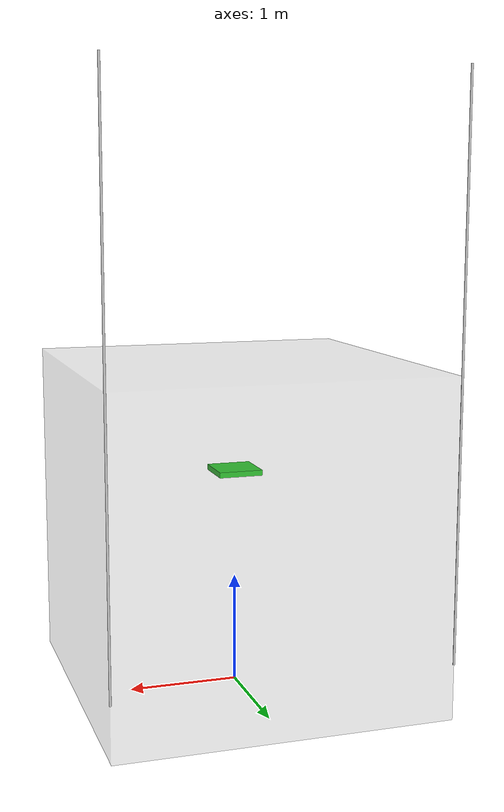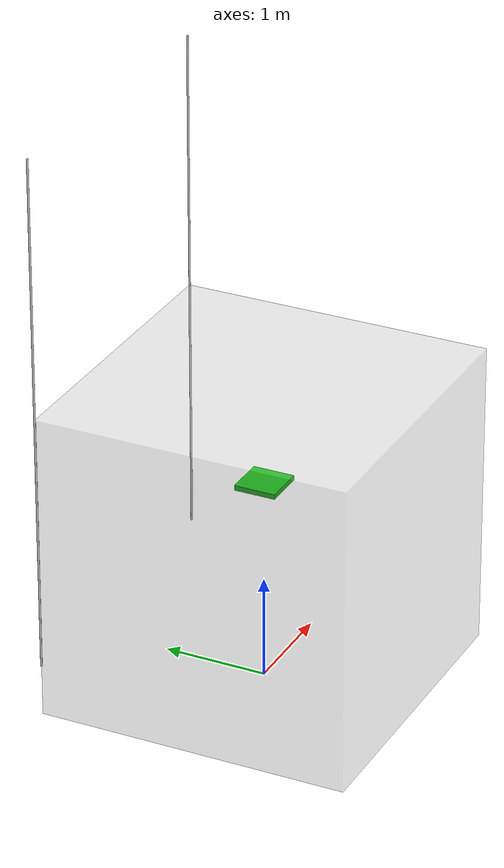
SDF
<?xml version="1.0" ?>
<sdf version="1.6">
  <model name="cdpr">
    <plugin
      filename="gz-sim-joint-state-publisher-system"
      name="gz::sim::systems::JointStatePublisher">
    </plugin>

    <!-- Base frame - single parallelpiped cuboid with nearly infinite mass -->
    <link name="base_link">
      <pose>0 0 1.5 0 0 0</pose>
      <inertial>
        <mass>1e6</mass>
        <inertia>
          <ixx>1e6</ixx>
          <iyy>1e6</iyy>
          <izz>1e6</izz>
        </inertia>
      </inertial>
      <visual name="visual">
        <geometry>
          <box>
            <size>3.0 3.0 3.0</size>
          </box>
        </geometry>
        <material>
          <ambient>0.7 0.7 0.7 0.3</ambient>
          <diffuse>0.7 0.7 0.7 0.3</diffuse>
        </material>
      </visual>
    </link>

    <!-- Platform - with attachment points at vertices -->
    <link name="platform">
      <pose>0 0 2 0 0 0</pose>
      <inertial>
        <mass>1.0</mass>
        <inertia>
          <ixx>0.1</ixx>
          <iyy>0.1</iyy>
          <izz>0.1</izz>
        </inertia>
      </inertial>
      <visual name="visual">
        <geometry>
          <box>
            <size>0.4 0.4 0.05</size>
          </box>
        </geometry>
        <material>
          <ambient>0 0.8 0 1</ambient>
          <diffuse>0 0.8 0 1</diffuse>
        </material>
      </visual>
      <collision name="collision">
        <geometry>
          <box>
            <size>0.4 0.4 0.05</size>
          </box>
        </geometry>
      </collision>
    </link>

    <!-- Virtual links for U-P-S chains -->
    <!-- Cable 1 virtual links -->
    <link name="cable1_base">
      <pose>1.5 1.5 3 0 0 0</pose>
      <inertial>
        <mass>1e-6</mass>
        <inertia>
          <ixx>1e-6</ixx>
          <iyy>1e-6</iyy>
          <izz>1e-6</izz>
        </inertia>
      </inertial>
      <visual name="visual">
        <geometry>
          <cylinder>
            <radius>0.01</radius>
            <length>5.0</length>
          </cylinder>
        </geometry>
        <material>
          <ambient>0.8 0.8 0.8 1</ambient>
          <diffuse>0.8 0.8 0.8 1</diffuse>
        </material>
      </visual>
    </link>

    <link name="cable1_prismatic">
      <pose>1.5 1.5 2.5 0 0 0</pose>
      <inertial>
        <mass>1e-6</mass>
        <inertia>
          <ixx>1e-6</ixx>
          <iyy>1e-6</iyy>
          <izz>1e-6</izz>
        </inertia>
      </inertial>
    </link>

    <!-- Repeating for cables 2-4 with different positions -->
    <!-- Cable 2 virtual links -->
    <link name="cable2_base">
      <pose>-1.5 1.5 3 0 0 0</pose>
      <inertial>
        <mass>1e-6</mass>
        <inertia>
          <ixx>1e-6</ixx>
          <iyy>1e-6</iyy>
          <izz>1e-6</izz>
        </inertia>
      </inertial>
      <visual name="visual">
        <geometry>
          <cylinder>
            <radius>0.01</radius>
            <length>5.0</length>
          </cylinder>
        </geometry>
        <material>
          <ambient>0.8 0.8 0.8 1</ambient>
          <diffuse>0.8 0.8 0.8 1</diffuse>
        </material>
      </visual>
    </link>

    <link name="cable2_prismatic">
      <pose>-1.5 1.5 2.5 0 0 0</pose>
      <inertial>
        <mass>1e-6</mass>
        <inertia>
          <ixx>1e-6</ixx>
          <iyy>1e-6</iyy>
          <izz>1e-6</izz>
        </inertia>
      </inertial>
    </link>

    <!-- Cable base attachments -->
    <joint name="cable1_base_joint" type="fixed">
      <parent>base_link</parent>
      <child>cable1_base</child>
    </joint>

    <joint name="cable2_base_joint" type="fixed">
      <parent>base_link</parent>
      <child>cable2_base</child>
    </joint>

    <!-- U-P-S Joint Chain for Cable 1 -->
    <joint name="cable1_universal" type="universal">
      <parent>cable1_base</parent>
      <child>cable1_prismatic</child>
      <axis>
        <xyz>1 0 0</xyz>
        <dynamics>
          <damping>0.1</damping>
        </dynamics>
      </axis>
      <axis2>
        <xyz>0 1 0</xyz>
        <dynamics>
          <damping>0.1</damping>
        </dynamics>
      </axis2>
    </joint>

    <joint name="cable1_prisma" type="prismatic">
      <parent>cable1_prismatic</parent>
      <child>platform</child>
      <pose>0.2 0.2 0 0 0 0</pose>
      <axis>
        <xyz>0 0 1</xyz>
        <limit>
          <lower>0</lower>
          <upper>5</upper>
          <effort>1000</effort>
          <velocity>1</velocity>
        </limit>
        <dynamics>
          <damping>1.0</damping>
          <spring_reference>0</spring_reference>
          <spring_stiffness>100</spring_stiffness>
        </dynamics>
      </axis>
    </joint>

    <!-- U-P-S Joint Chain for Cable 2 -->
    <joint name="cable2_universal" type="universal">
      <parent>cable2_base</parent>
      <child>cable2_prismatic</child>
      <axis>
        <xyz>1 0 0</xyz>
        <dynamics>
          <damping>0.1</damping>
        </dynamics>
      </axis>
      <axis2>
        <xyz>0 1 0</xyz>
        <dynamics>
          <damping>0.1</damping>
        </dynamics>
      </axis2>
    </joint>

    <joint name="cable2_prisma" type="prismatic">
      <parent>cable2_prismatic</parent>
      <child>platform</child>
      <pose>-0.2 0.2 0 0 0 0</pose>
      <axis>
        <xyz>0 0 1</xyz>
        <limit>
          <lower>0</lower>
          <upper>5</upper>
          <effort>1000</effort>
          <velocity>1</velocity>
        </limit>
        <dynamics>
          <damping>1.0</damping>
          <spring_reference>0</spring_reference>
          <spring_stiffness>100</spring_stiffness>
        </dynamics>
      </axis>
    </joint>

  </model>
</sdf>
